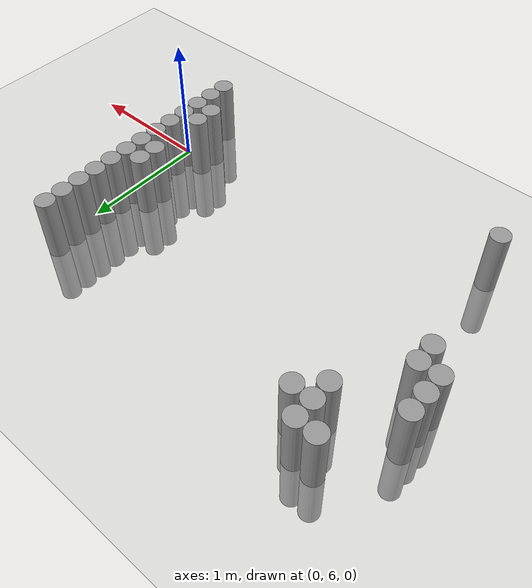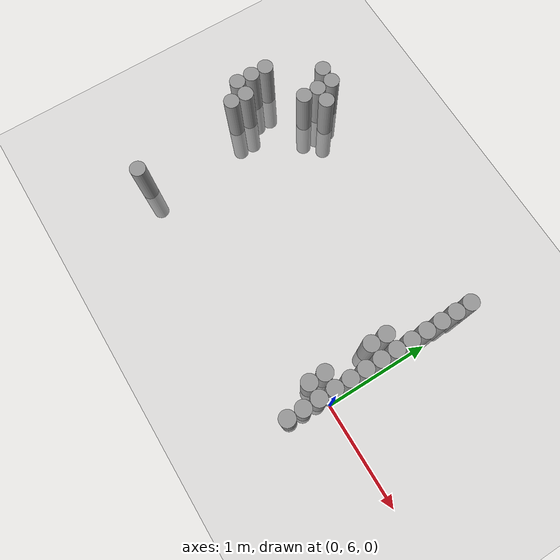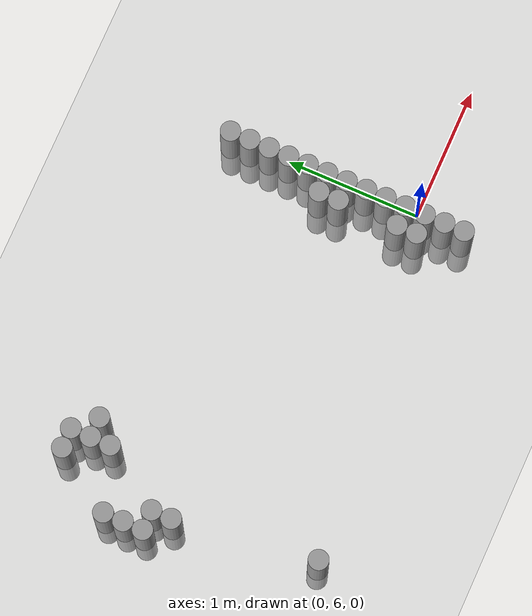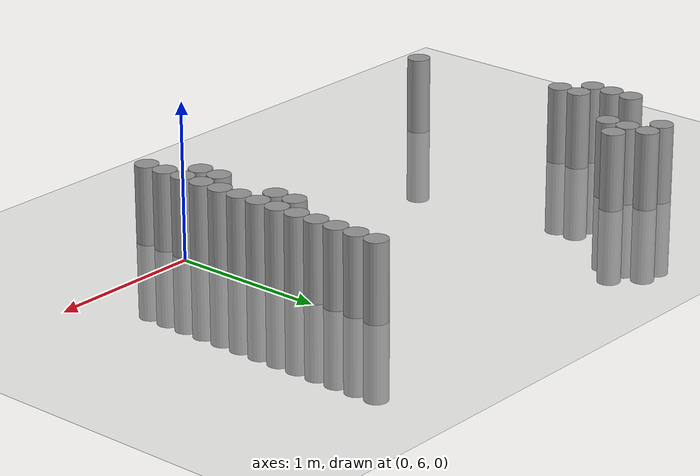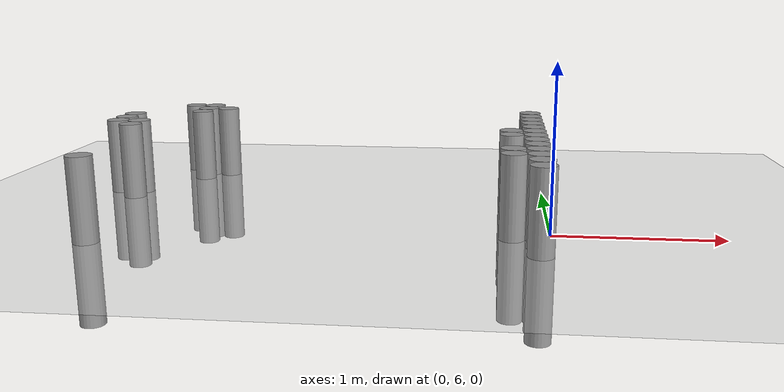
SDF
<sdf version="1.6">
 <world name="default">
  <model name="ground_plane">
   <static>1</static>
   <static>1</static>
   <link name="link">
    <collision name="collision">
     <geometry><plane><normal>0 0 1</normal><size>100 100</size></plane></geometry>
     <surface><friction><ode><mu>100</mu><mu2>50</mu2></ode></friction></surface>
    </collision>
    <visual name="visual">
     <cast_shadows>0</cast_shadows>
     <geometry><plane><normal>0 0 1</normal><size>100 100</size></plane></geometry>
     <material>
      <script><uri>file://media/materials/scripts/gazebo.material</uri><name>Gazebo/Grey</name></script>
     </material>
    </visual>
   </link>
  </model>
  <model name="unit_cylinder_157">
   <static>1</static>
   <pose>-2.925000 6.825000 0.000000 0.000000 0.000000 0.000000</pose>
   <link name="link">
    <inertial>
     <mass>1</mass>
     <inertia><ixx>0.145833</ixx><ixy>0</ixy><ixz>0</ixz><iyy>0.145833</iyy><iyz>0</iyz><izz>0.125</izz></inertia>
    </inertial>
    <collision name="collision">
     <geometry><cylinder><radius>0.075000</radius><length>1</length></cylinder></geometry>
    </collision>
    <visual name="visual">
     <geometry><cylinder><radius>0.075000</radius><length>1</length></cylinder></geometry>
     <material>
      <script><name>Gazebo/Grey</name><uri>file://media/materials/scripts/gazebo.material</uri></script>
     </material>
    </visual>
   </link>
  </model>
  <model name="unit_cylinder_158">
   <static>1</static>
   <pose>-2.925000 6.975000 0.000000 0.000000 0.000000 0.000000</pose>
   <link name="link">
    <inertial>
     <mass>1</mass>
     <inertia><ixx>0.145833</ixx><ixy>0</ixy><ixz>0</ixz><iyy>0.145833</iyy><iyz>0</iyz><izz>0.125</izz></inertia>
    </inertial>
    <collision name="collision">
     <geometry><cylinder><radius>0.075000</radius><length>1</length></cylinder></geometry>
    </collision>
    <visual name="visual">
     <geometry><cylinder><radius>0.075000</radius><length>1</length></cylinder></geometry>
     <material>
      <script><name>Gazebo/Grey</name><uri>file://media/materials/scripts/gazebo.material</uri></script>
     </material>
    </visual>
   </link>
  </model>
  <model name="unit_cylinder_159">
   <static>1</static>
   <pose>-2.925000 7.125000 0.000000 0.000000 0.000000 0.000000</pose>
   <link name="link">
    <inertial>
     <mass>1</mass>
     <inertia><ixx>0.145833</ixx><ixy>0</ixy><ixz>0</ixz><iyy>0.145833</iyy><iyz>0</iyz><izz>0.125</izz></inertia>
    </inertial>
    <collision name="collision">
     <geometry><cylinder><radius>0.075000</radius><length>1</length></cylinder></geometry>
    </collision>
    <visual name="visual">
     <geometry><cylinder><radius>0.075000</radius><length>1</length></cylinder></geometry>
     <material>
      <script><name>Gazebo/Grey</name><uri>file://media/materials/scripts/gazebo.material</uri></script>
     </material>
    </visual>
   </link>
  </model>
  <model name="unit_cylinder_161">
   <static>1</static>
   <pose>-2.775000 6.675000 0.000000 0.000000 0.000000 0.000000</pose>
   <link name="link">
    <inertial>
     <mass>1</mass>
     <inertia><ixx>0.145833</ixx><ixy>0</ixy><ixz>0</ixz><iyy>0.145833</iyy><iyz>0</iyz><izz>0.125</izz></inertia>
    </inertial>
    <collision name="collision">
     <geometry><cylinder><radius>0.075000</radius><length>1</length></cylinder></geometry>
    </collision>
    <visual name="visual">
     <geometry><cylinder><radius>0.075000</radius><length>1</length></cylinder></geometry>
     <material>
      <script><name>Gazebo/Grey</name><uri>file://media/materials/scripts/gazebo.material</uri></script>
     </material>
    </visual>
   </link>
  </model>
  <model name="unit_cylinder_162">
   <static>1</static>
   <pose>-2.775000 6.825000 0.000000 0.000000 0.000000 0.000000</pose>
   <link name="link">
    <inertial>
     <mass>1</mass>
     <inertia><ixx>0.145833</ixx><ixy>0</ixy><ixz>0</ixz><iyy>0.145833</iyy><iyz>0</iyz><izz>0.125</izz></inertia>
    </inertial>
    <collision name="collision">
     <geometry><cylinder><radius>0.075000</radius><length>1</length></cylinder></geometry>
    </collision>
    <visual name="visual">
     <geometry><cylinder><radius>0.075000</radius><length>1</length></cylinder></geometry>
     <material>
      <script><name>Gazebo/Grey</name><uri>file://media/materials/scripts/gazebo.material</uri></script>
     </material>
    </visual>
   </link>
  </model>
  <model name="unit_cylinder_165">
   <static>1</static>
   <pose>-2.625000 5.625000 0.000000 0.000000 0.000000 0.000000</pose>
   <link name="link">
    <inertial>
     <mass>1</mass>
     <inertia><ixx>0.145833</ixx><ixy>0</ixy><ixz>0</ixz><iyy>0.145833</iyy><iyz>0</iyz><izz>0.125</izz></inertia>
    </inertial>
    <collision name="collision">
     <geometry><cylinder><radius>0.075000</radius><length>1</length></cylinder></geometry>
    </collision>
    <visual name="visual">
     <geometry><cylinder><radius>0.075000</radius><length>1</length></cylinder></geometry>
     <material>
      <script><name>Gazebo/Grey</name><uri>file://media/materials/scripts/gazebo.material</uri></script>
     </material>
    </visual>
   </link>
  </model>
  <model name="unit_cylinder_166">
   <static>1</static>
   <pose>-2.625000 7.575000 0.000000 0.000000 0.000000 0.000000</pose>
   <link name="link">
    <inertial>
     <mass>1</mass>
     <inertia><ixx>0.145833</ixx><ixy>0</ixy><ixz>0</ixz><iyy>0.145833</iyy><iyz>0</iyz><izz>0.125</izz></inertia>
    </inertial>
    <collision name="collision">
     <geometry><cylinder><radius>0.075000</radius><length>1</length></cylinder></geometry>
    </collision>
    <visual name="visual">
     <geometry><cylinder><radius>0.075000</radius><length>1</length></cylinder></geometry>
     <material>
      <script><name>Gazebo/Grey</name><uri>file://media/materials/scripts/gazebo.material</uri></script>
     </material>
    </visual>
   </link>
  </model>
  <model name="unit_cylinder_169">
   <static>1</static>
   <pose>-2.475000 7.275000 0.000000 0.000000 0.000000 0.000000</pose>
   <link name="link">
    <inertial>
     <mass>1</mass>
     <inertia><ixx>0.145833</ixx><ixy>0</ixy><ixz>0</ixz><iyy>0.145833</iyy><iyz>0</iyz><izz>0.125</izz></inertia>
    </inertial>
    <collision name="collision">
     <geometry><cylinder><radius>0.075000</radius><length>1</length></cylinder></geometry>
    </collision>
    <visual name="visual">
     <geometry><cylinder><radius>0.075000</radius><length>1</length></cylinder></geometry>
     <material>
      <script><name>Gazebo/Grey</name><uri>file://media/materials/scripts/gazebo.material</uri></script>
     </material>
    </visual>
   </link>
  </model>
  <model name="unit_cylinder_170">
   <static>1</static>
   <pose>-2.475000 7.425000 0.000000 0.000000 0.000000 0.000000</pose>
   <link name="link">
    <inertial>
     <mass>1</mass>
     <inertia><ixx>0.145833</ixx><ixy>0</ixy><ixz>0</ixz><iyy>0.145833</iyy><iyz>0</iyz><izz>0.125</izz></inertia>
    </inertial>
    <collision name="collision">
     <geometry><cylinder><radius>0.075000</radius><length>1</length></cylinder></geometry>
    </collision>
    <visual name="visual">
     <geometry><cylinder><radius>0.075000</radius><length>1</length></cylinder></geometry>
     <material>
      <script><name>Gazebo/Grey</name><uri>file://media/materials/scripts/gazebo.material</uri></script>
     </material>
    </visual>
   </link>
  </model>
  <model name="unit_cylinder_171">
   <static>1</static>
   <pose>-2.475000 7.575000 0.000000 0.000000 0.000000 0.000000</pose>
   <link name="link">
    <inertial>
     <mass>1</mass>
     <inertia><ixx>0.145833</ixx><ixy>0</ixy><ixz>0</ixz><iyy>0.145833</iyy><iyz>0</iyz><izz>0.125</izz></inertia>
    </inertial>
    <collision name="collision">
     <geometry><cylinder><radius>0.075000</radius><length>1</length></cylinder></geometry>
    </collision>
    <visual name="visual">
     <geometry><cylinder><radius>0.075000</radius><length>1</length></cylinder></geometry>
     <material>
      <script><name>Gazebo/Grey</name><uri>file://media/materials/scripts/gazebo.material</uri></script>
     </material>
    </visual>
   </link>
  </model>
  <model name="unit_cylinder_176">
   <static>1</static>
   <pose>-2.325000 7.425000 0.000000 0.000000 0.000000 0.000000</pose>
   <link name="link">
    <inertial>
     <mass>1</mass>
     <inertia><ixx>0.145833</ixx><ixy>0</ixy><ixz>0</ixz><iyy>0.145833</iyy><iyz>0</iyz><izz>0.125</izz></inertia>
    </inertial>
    <collision name="collision">
     <geometry><cylinder><radius>0.075000</radius><length>1</length></cylinder></geometry>
    </collision>
    <visual name="visual">
     <geometry><cylinder><radius>0.075000</radius><length>1</length></cylinder></geometry>
     <material>
      <script><name>Gazebo/Grey</name><uri>file://media/materials/scripts/gazebo.material</uri></script>
     </material>
    </visual>
   </link>
  </model>
  <model name="unit_cylinder_186">
   <static>1</static>
   <pose>-0.225000 5.925000 0.000000 0.000000 0.000000 0.000000</pose>
   <link name="link">
    <inertial>
     <mass>1</mass>
     <inertia><ixx>0.145833</ixx><ixy>0</ixy><ixz>0</ixz><iyy>0.145833</iyy><iyz>0</iyz><izz>0.125</izz></inertia>
    </inertial>
    <collision name="collision">
     <geometry><cylinder><radius>0.075000</radius><length>1</length></cylinder></geometry>
    </collision>
    <visual name="visual">
     <geometry><cylinder><radius>0.075000</radius><length>1</length></cylinder></geometry>
     <material>
      <script><name>Gazebo/Grey</name><uri>file://media/materials/scripts/gazebo.material</uri></script>
     </material>
    </visual>
   </link>
  </model>
  <model name="unit_cylinder_187">
   <static>1</static>
   <pose>-0.225000 6.075000 0.000000 0.000000 0.000000 0.000000</pose>
   <link name="link">
    <inertial>
     <mass>1</mass>
     <inertia><ixx>0.145833</ixx><ixy>0</ixy><ixz>0</ixz><iyy>0.145833</iyy><iyz>0</iyz><izz>0.125</izz></inertia>
    </inertial>
    <collision name="collision">
     <geometry><cylinder><radius>0.075000</radius><length>1</length></cylinder></geometry>
    </collision>
    <visual name="visual">
     <geometry><cylinder><radius>0.075000</radius><length>1</length></cylinder></geometry>
     <material>
      <script><name>Gazebo/Grey</name><uri>file://media/materials/scripts/gazebo.material</uri></script>
     </material>
    </visual>
   </link>
  </model>
  <model name="unit_cylinder_188">
   <static>1</static>
   <pose>-0.225000 6.525000 0.000000 0.000000 0.000000 0.000000</pose>
   <link name="link">
    <inertial>
     <mass>1</mass>
     <inertia><ixx>0.145833</ixx><ixy>0</ixy><ixz>0</ixz><iyy>0.145833</iyy><iyz>0</iyz><izz>0.125</izz></inertia>
    </inertial>
    <collision name="collision">
     <geometry><cylinder><radius>0.075000</radius><length>1</length></cylinder></geometry>
    </collision>
    <visual name="visual">
     <geometry><cylinder><radius>0.075000</radius><length>1</length></cylinder></geometry>
     <material>
      <script><name>Gazebo/Grey</name><uri>file://media/materials/scripts/gazebo.material</uri></script>
     </material>
    </visual>
   </link>
  </model>
  <model name="unit_cylinder_189">
   <static>1</static>
   <pose>-0.225000 6.675000 0.000000 0.000000 0.000000 0.000000</pose>
   <link name="link">
    <inertial>
     <mass>1</mass>
     <inertia><ixx>0.145833</ixx><ixy>0</ixy><ixz>0</ixz><iyy>0.145833</iyy><iyz>0</iyz><izz>0.125</izz></inertia>
    </inertial>
    <collision name="collision">
     <geometry><cylinder><radius>0.075000</radius><length>1</length></cylinder></geometry>
    </collision>
    <visual name="visual">
     <geometry><cylinder><radius>0.075000</radius><length>1</length></cylinder></geometry>
     <material>
      <script><name>Gazebo/Grey</name><uri>file://media/materials/scripts/gazebo.material</uri></script>
     </material>
    </visual>
   </link>
  </model>
  <model name="unit_cylinder_198">
   <static>1</static>
   <pose>-0.075000 5.625000 0.000000 0.000000 0.000000 0.000000</pose>
   <link name="link">
    <inertial>
     <mass>1</mass>
     <inertia><ixx>0.145833</ixx><ixy>0</ixy><ixz>0</ixz><iyy>0.145833</iyy><iyz>0</iyz><izz>0.125</izz></inertia>
    </inertial>
    <collision name="collision">
     <geometry><cylinder><radius>0.075000</radius><length>1</length></cylinder></geometry>
    </collision>
    <visual name="visual">
     <geometry><cylinder><radius>0.075000</radius><length>1</length></cylinder></geometry>
     <material>
      <script><name>Gazebo/Grey</name><uri>file://media/materials/scripts/gazebo.material</uri></script>
     </material>
    </visual>
   </link>
  </model>
  <model name="unit_cylinder_199">
   <static>1</static>
   <pose>-0.075000 5.775000 0.000000 0.000000 0.000000 0.000000</pose>
   <link name="link">
    <inertial>
     <mass>1</mass>
     <inertia><ixx>0.145833</ixx><ixy>0</ixy><ixz>0</ixz><iyy>0.145833</iyy><iyz>0</iyz><izz>0.125</izz></inertia>
    </inertial>
    <collision name="collision">
     <geometry><cylinder><radius>0.075000</radius><length>1</length></cylinder></geometry>
    </collision>
    <visual name="visual">
     <geometry><cylinder><radius>0.075000</radius><length>1</length></cylinder></geometry>
     <material>
      <script><name>Gazebo/Grey</name><uri>file://media/materials/scripts/gazebo.material</uri></script>
     </material>
    </visual>
   </link>
  </model>
  <model name="unit_cylinder_200">
   <static>1</static>
   <pose>-0.075000 5.925000 0.000000 0.000000 0.000000 0.000000</pose>
   <link name="link">
    <inertial>
     <mass>1</mass>
     <inertia><ixx>0.145833</ixx><ixy>0</ixy><ixz>0</ixz><iyy>0.145833</iyy><iyz>0</iyz><izz>0.125</izz></inertia>
    </inertial>
    <collision name="collision">
     <geometry><cylinder><radius>0.075000</radius><length>1</length></cylinder></geometry>
    </collision>
    <visual name="visual">
     <geometry><cylinder><radius>0.075000</radius><length>1</length></cylinder></geometry>
     <material>
      <script><name>Gazebo/Grey</name><uri>file://media/materials/scripts/gazebo.material</uri></script>
     </material>
    </visual>
   </link>
  </model>
  <model name="unit_cylinder_201">
   <static>1</static>
   <pose>-0.075000 6.075000 0.000000 0.000000 0.000000 0.000000</pose>
   <link name="link">
    <inertial>
     <mass>1</mass>
     <inertia><ixx>0.145833</ixx><ixy>0</ixy><ixz>0</ixz><iyy>0.145833</iyy><iyz>0</iyz><izz>0.125</izz></inertia>
    </inertial>
    <collision name="collision">
     <geometry><cylinder><radius>0.075000</radius><length>1</length></cylinder></geometry>
    </collision>
    <visual name="visual">
     <geometry><cylinder><radius>0.075000</radius><length>1</length></cylinder></geometry>
     <material>
      <script><name>Gazebo/Grey</name><uri>file://media/materials/scripts/gazebo.material</uri></script>
     </material>
    </visual>
   </link>
  </model>
  <model name="unit_cylinder_202">
   <static>1</static>
   <pose>-0.075000 6.225000 0.000000 0.000000 0.000000 0.000000</pose>
   <link name="link">
    <inertial>
     <mass>1</mass>
     <inertia><ixx>0.145833</ixx><ixy>0</ixy><ixz>0</ixz><iyy>0.145833</iyy><iyz>0</iyz><izz>0.125</izz></inertia>
    </inertial>
    <collision name="collision">
     <geometry><cylinder><radius>0.075000</radius><length>1</length></cylinder></geometry>
    </collision>
    <visual name="visual">
     <geometry><cylinder><radius>0.075000</radius><length>1</length></cylinder></geometry>
     <material>
      <script><name>Gazebo/Grey</name><uri>file://media/materials/scripts/gazebo.material</uri></script>
     </material>
    </visual>
   </link>
  </model>
  <model name="unit_cylinder_203">
   <static>1</static>
   <pose>-0.075000 6.375000 0.000000 0.000000 0.000000 0.000000</pose>
   <link name="link">
    <inertial>
     <mass>1</mass>
     <inertia><ixx>0.145833</ixx><ixy>0</ixy><ixz>0</ixz><iyy>0.145833</iyy><iyz>0</iyz><izz>0.125</izz></inertia>
    </inertial>
    <collision name="collision">
     <geometry><cylinder><radius>0.075000</radius><length>1</length></cylinder></geometry>
    </collision>
    <visual name="visual">
     <geometry><cylinder><radius>0.075000</radius><length>1</length></cylinder></geometry>
     <material>
      <script><name>Gazebo/Grey</name><uri>file://media/materials/scripts/gazebo.material</uri></script>
     </material>
    </visual>
   </link>
  </model>
  <model name="unit_cylinder_204">
   <static>1</static>
   <pose>-0.075000 6.525000 0.000000 0.000000 0.000000 0.000000</pose>
   <link name="link">
    <inertial>
     <mass>1</mass>
     <inertia><ixx>0.145833</ixx><ixy>0</ixy><ixz>0</ixz><iyy>0.145833</iyy><iyz>0</iyz><izz>0.125</izz></inertia>
    </inertial>
    <collision name="collision">
     <geometry><cylinder><radius>0.075000</radius><length>1</length></cylinder></geometry>
    </collision>
    <visual name="visual">
     <geometry><cylinder><radius>0.075000</radius><length>1</length></cylinder></geometry>
     <material>
      <script><name>Gazebo/Grey</name><uri>file://media/materials/scripts/gazebo.material</uri></script>
     </material>
    </visual>
   </link>
  </model>
  <model name="unit_cylinder_205">
   <static>1</static>
   <pose>-0.075000 6.675000 0.000000 0.000000 0.000000 0.000000</pose>
   <link name="link">
    <inertial>
     <mass>1</mass>
     <inertia><ixx>0.145833</ixx><ixy>0</ixy><ixz>0</ixz><iyy>0.145833</iyy><iyz>0</iyz><izz>0.125</izz></inertia>
    </inertial>
    <collision name="collision">
     <geometry><cylinder><radius>0.075000</radius><length>1</length></cylinder></geometry>
    </collision>
    <visual name="visual">
     <geometry><cylinder><radius>0.075000</radius><length>1</length></cylinder></geometry>
     <material>
      <script><name>Gazebo/Grey</name><uri>file://media/materials/scripts/gazebo.material</uri></script>
     </material>
    </visual>
   </link>
  </model>
  <model name="unit_cylinder_206">
   <static>1</static>
   <pose>-0.075000 6.825000 0.000000 0.000000 0.000000 0.000000</pose>
   <link name="link">
    <inertial>
     <mass>1</mass>
     <inertia><ixx>0.145833</ixx><ixy>0</ixy><ixz>0</ixz><iyy>0.145833</iyy><iyz>0</iyz><izz>0.125</izz></inertia>
    </inertial>
    <collision name="collision">
     <geometry><cylinder><radius>0.075000</radius><length>1</length></cylinder></geometry>
    </collision>
    <visual name="visual">
     <geometry><cylinder><radius>0.075000</radius><length>1</length></cylinder></geometry>
     <material>
      <script><name>Gazebo/Grey</name><uri>file://media/materials/scripts/gazebo.material</uri></script>
     </material>
    </visual>
   </link>
  </model>
  <model name="unit_cylinder_207">
   <static>1</static>
   <pose>-0.075000 6.975000 0.000000 0.000000 0.000000 0.000000</pose>
   <link name="link">
    <inertial>
     <mass>1</mass>
     <inertia><ixx>0.145833</ixx><ixy>0</ixy><ixz>0</ixz><iyy>0.145833</iyy><iyz>0</iyz><izz>0.125</izz></inertia>
    </inertial>
    <collision name="collision">
     <geometry><cylinder><radius>0.075000</radius><length>1</length></cylinder></geometry>
    </collision>
    <visual name="visual">
     <geometry><cylinder><radius>0.075000</radius><length>1</length></cylinder></geometry>
     <material>
      <script><name>Gazebo/Grey</name><uri>file://media/materials/scripts/gazebo.material</uri></script>
     </material>
    </visual>
   </link>
  </model>
  <model name="unit_cylinder_208">
   <static>1</static>
   <pose>-0.075000 7.125000 0.000000 0.000000 0.000000 0.000000</pose>
   <link name="link">
    <inertial>
     <mass>1</mass>
     <inertia><ixx>0.145833</ixx><ixy>0</ixy><ixz>0</ixz><iyy>0.145833</iyy><iyz>0</iyz><izz>0.125</izz></inertia>
    </inertial>
    <collision name="collision">
     <geometry><cylinder><radius>0.075000</radius><length>1</length></cylinder></geometry>
    </collision>
    <visual name="visual">
     <geometry><cylinder><radius>0.075000</radius><length>1</length></cylinder></geometry>
     <material>
      <script><name>Gazebo/Grey</name><uri>file://media/materials/scripts/gazebo.material</uri></script>
     </material>
    </visual>
   </link>
  </model>
  <model name="unit_cylinder_209">
   <static>1</static>
   <pose>-0.075000 7.275000 0.000000 0.000000 0.000000 0.000000</pose>
   <link name="link">
    <inertial>
     <mass>1</mass>
     <inertia><ixx>0.145833</ixx><ixy>0</ixy><ixz>0</ixz><iyy>0.145833</iyy><iyz>0</iyz><izz>0.125</izz></inertia>
    </inertial>
    <collision name="collision">
     <geometry><cylinder><radius>0.075000</radius><length>1</length></cylinder></geometry>
    </collision>
    <visual name="visual">
     <geometry><cylinder><radius>0.075000</radius><length>1</length></cylinder></geometry>
     <material>
      <script><name>Gazebo/Grey</name><uri>file://media/materials/scripts/gazebo.material</uri></script>
     </material>
    </visual>
   </link>
  </model>
  <model name="unit_cylinder_210">
   <static>1</static>
   <pose>-0.075000 7.425000 0.000000 0.000000 0.000000 0.000000</pose>
   <link name="link">
    <inertial>
     <mass>1</mass>
     <inertia><ixx>0.145833</ixx><ixy>0</ixy><ixz>0</ixz><iyy>0.145833</iyy><iyz>0</iyz><izz>0.125</izz></inertia>
    </inertial>
    <collision name="collision">
     <geometry><cylinder><radius>0.075000</radius><length>1</length></cylinder></geometry>
    </collision>
    <visual name="visual">
     <geometry><cylinder><radius>0.075000</radius><length>1</length></cylinder></geometry>
     <material>
      <script><name>Gazebo/Grey</name><uri>file://media/materials/scripts/gazebo.material</uri></script>
     </material>
    </visual>
   </link>
  </model>
 </world>
</sdf>
